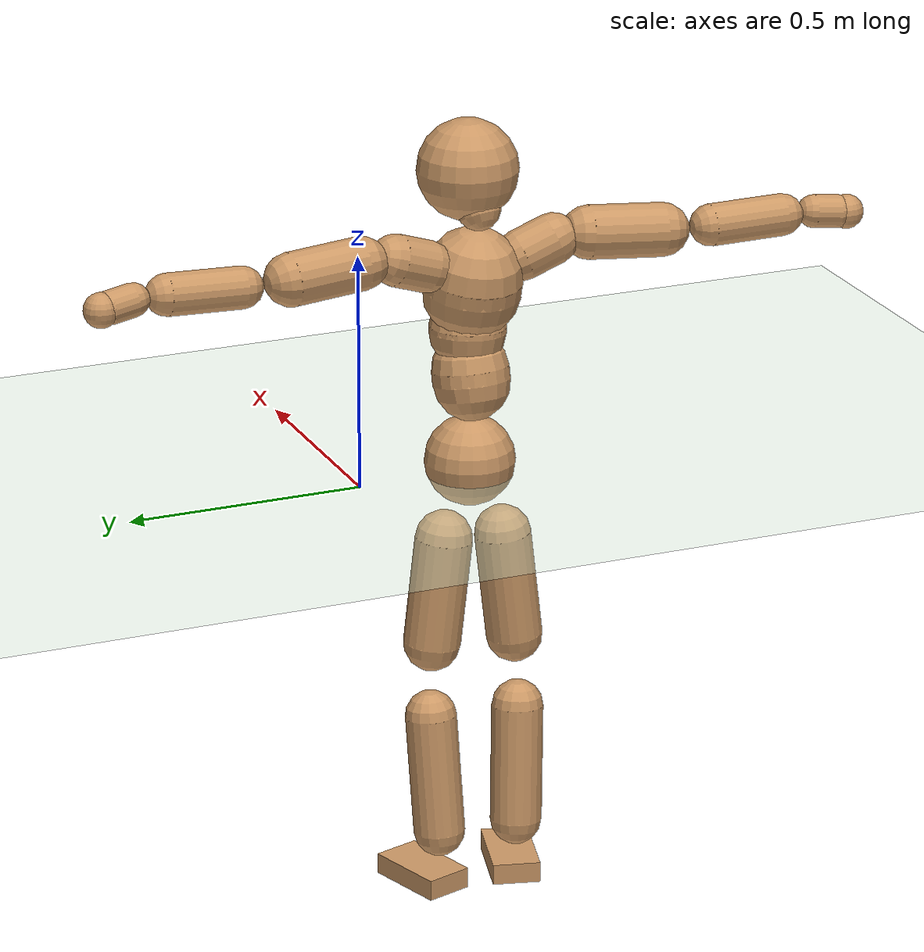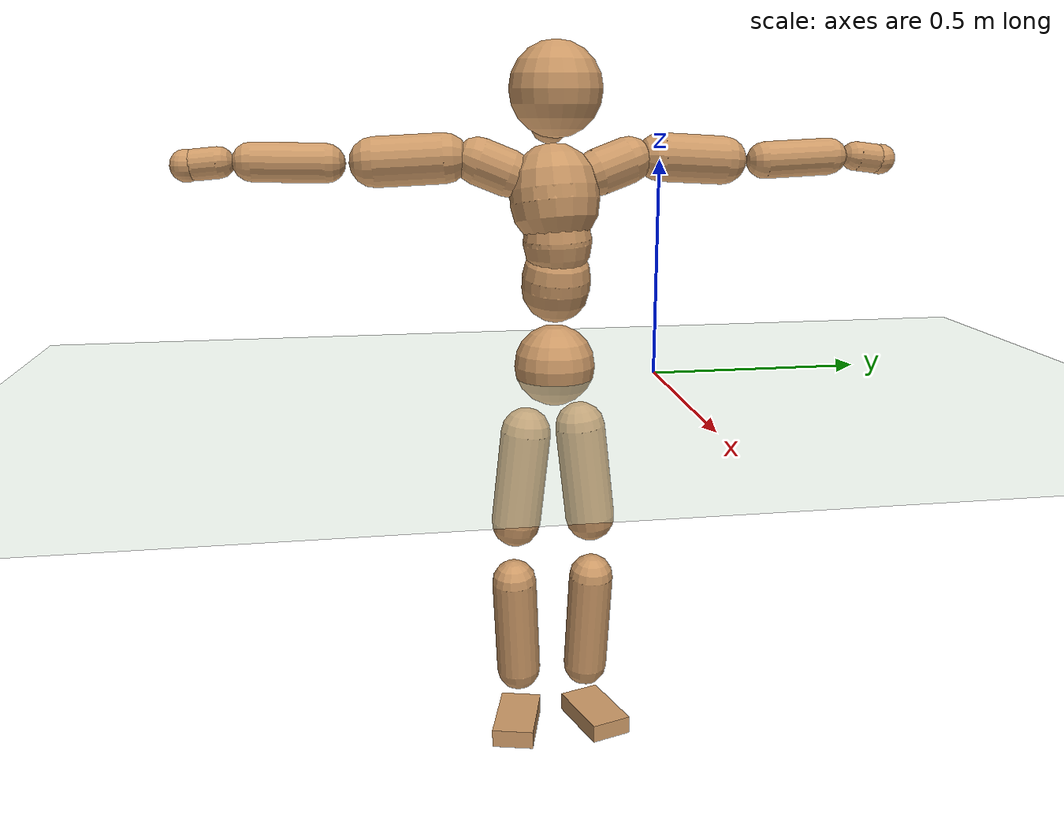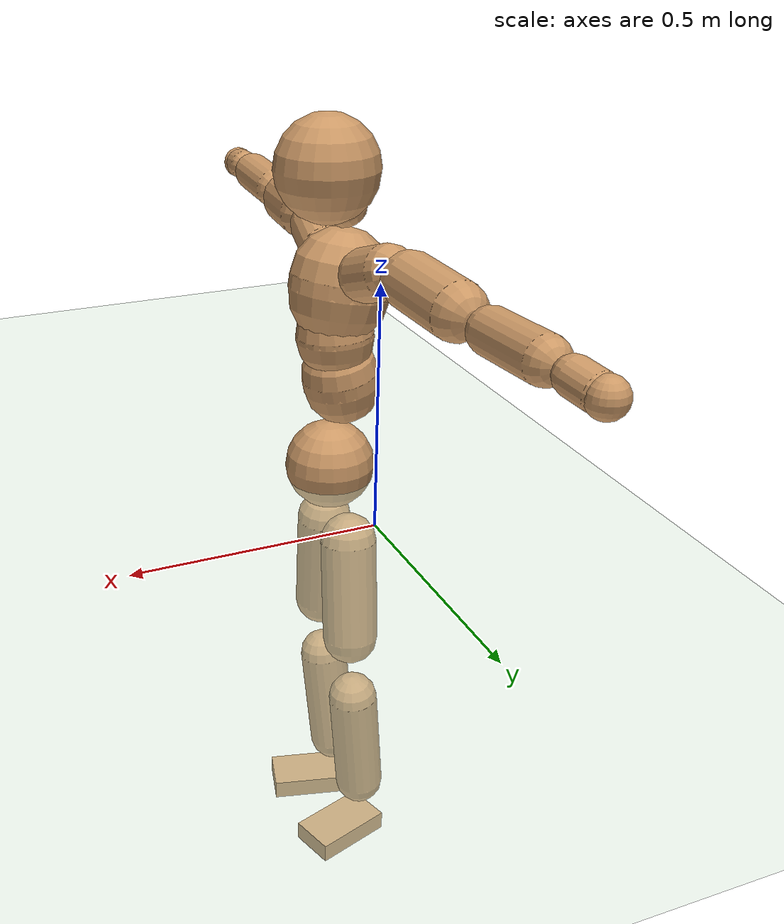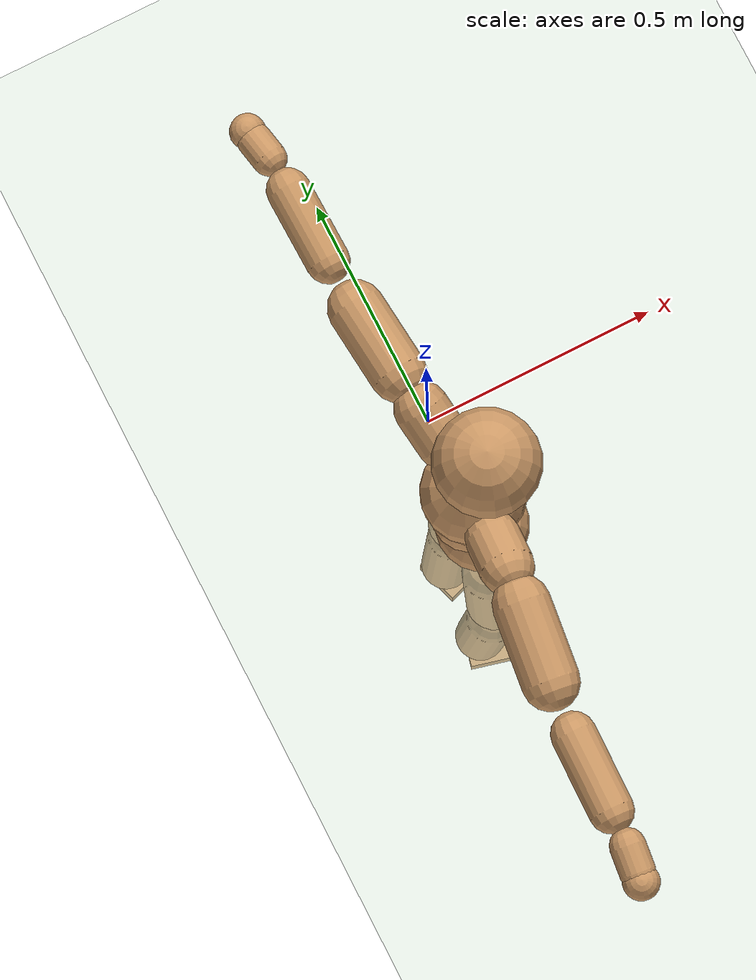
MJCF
<mujoco model="humanoid">
  <compiler coordinate="local"/>
  <default>
    <joint damping="0.0" armature="0.01" stiffness="0.0" limited="true"/>
    <geom conaffinity="1" condim="3" contype="7" margin="0.001" rgba="0.8 0.6 .4 1"/>
  </default>
  <asset>
    <texture type="skybox" builtin="gradient" rgb1=".4 .5 .6" rgb2="0 0 0" width="100" height="100"/>
    <texture builtin="flat" height="1278" mark="cross" markrgb="1 1 1" name="texgeom" random="0.01" rgb1="0.8 0.6 0.4" rgb2="0.8 0.6 0.4" type="cube" width="127"/>
    <texture builtin="checker" height="100" name="texplane" rgb1="0 0 0" rgb2="0.8 0.8 0.8" type="2d" width="100"/>
    <material name="MatPlane" reflectance="0.5" shininess="1" specular="1" texrepeat="60 60" texture="texplane"/>
    <material name="geom" texture="texgeom" texuniform="true"/>
  </asset>
  <worldbody>
    <light cutoff="100" diffuse="1 1 1" dir="-0 0 -1.3" directional="true" exponent="1" pos="0 0 1.3" specular=".1 .1 .1"/>
    <geom conaffinity="1" condim="3" name="floor" pos="0 0 0" rgba="0.8 0.9 0.8 1" size="100 100 .2" type="plane" material="MatPlane"/>
    <body name="Pelvis" pos="-0.0023 -0.2425 0.0277">
      <freejoint name="Pelvis"/>
      <geom type="sphere" contype="1" conaffinity="1" density="500" size="0.0957" pos="0.0000 0.0000 0.0000" name="Pelvis"/>
      <body name="L_Hip" pos="-0.0179 0.0571 -0.0823">
        <joint name="L_Hip_x" type="hinge" pos="0 0 0" axis="1 0 0" stiffness="800" damping="80" armature="0.02" range="-180.0000 180.0000"/>
        <joint name="L_Hip_y" type="hinge" pos="0 0 0" axis="0 1 0" stiffness="800" damping="80" armature="0.02" range="-180.0000 180.0000"/>
        <joint name="L_Hip_z" type="hinge" pos="0 0 0" axis="0 0 1" stiffness="800" damping="80" armature="0.02" range="-180.0000 180.0000"/>
        <geom type="capsule" contype="1" conaffinity="1" density="500" fromto="0.0015 0.0086 -0.0776 0.0061 0.0342 -0.3103" size="0.0605" name="L_Hip"/>
        <body name="L_Knee" pos="0.0077 0.0428 -0.3879">
          <joint name="L_Knee_x" type="hinge" pos="0 0 0" axis="1 0 0" stiffness="800" damping="80" armature="0.02" range="-180.0000 180.0000"/>
          <joint name="L_Knee_y" type="hinge" pos="0 0 0" axis="0 1 0" stiffness="800" damping="80" armature="0.02" range="-180.0000 180.0000"/>
          <joint name="L_Knee_z" type="hinge" pos="0 0 0" axis="0 0 1" stiffness="800" damping="80" armature="0.02" range="-180.0000 180.0000"/>
          <geom type="capsule" contype="1" conaffinity="1" density="500" fromto="-0.0075 -0.0030 -0.0861 -0.0300 -0.0121 -0.3443" size="0.0548" name="L_Knee"/>
          <body name="L_Ankle" pos="-0.0375 -0.0151 -0.4304">
            <joint name="L_Ankle_x" type="hinge" pos="0 0 0" axis="1 0 0" stiffness="800" damping="80" armature="0.02" range="-180.0000 180.0000"/>
            <joint name="L_Ankle_y" type="hinge" pos="0 0 0" axis="0 1 0" stiffness="800" damping="80" armature="0.02" range="-180.0000 180.0000"/>
            <joint name="L_Ankle_z" type="hinge" pos="0 0 0" axis="0 0 1" stiffness="800" damping="80" armature="0.02" range="-180.0000 180.0000"/>
            <geom type="box" contype="1" conaffinity="1" density="500" pos="0.0620 0.0196 -0.0303" size="0.0891 0.0512 0.0224" quat="0.9883 0.0000 0.0000 0.1523" name="L_Ankle"/>
            <body name="L_Toe" pos="0.1241 0.0392 -0.0605">
              <joint name="L_Toe_x" type="hinge" pos="0 0 0" axis="1 0 0" stiffness="500" damping="50" armature="0.02" range="-180.0000 180.0000"/>
              <joint name="L_Toe_y" type="hinge" pos="0 0 0" axis="0 1 0" stiffness="500" damping="50" armature="0.02" range="-180.0000 180.0000"/>
              <joint name="L_Toe_z" type="hinge" pos="0 0 0" axis="0 0 1" stiffness="500" damping="50" armature="0.02" range="-180.0000 180.0000"/>
              <geom type="box" contype="1" conaffinity="1" density="500" pos="0.0000 0.0000 0.0295" size="0.0011 0.0025 0.0011" quat="0.9876 0.0000 0.0000 0.1572" name="L_Toe"/>
            </body>
          </body>
        </body>
      </body>
      <body name="R_Hip" pos="-0.0138 -0.0589 -0.0908">
        <joint name="R_Hip_x" type="hinge" pos="0 0 0" axis="1 0 0" stiffness="800" damping="80" armature="0.02" range="-180.0000 180.0000"/>
        <joint name="R_Hip_y" type="hinge" pos="0 0 0" axis="0 1 0" stiffness="800" damping="80" armature="0.02" range="-180.0000 180.0000"/>
        <joint name="R_Hip_z" type="hinge" pos="0 0 0" axis="0 0 1" stiffness="800" damping="80" armature="0.02" range="-180.0000 180.0000"/>
        <geom type="capsule" contype="1" conaffinity="1" density="500" fromto="-0.0009 -0.0086 -0.0772 -0.0036 -0.0343 -0.3086" size="0.06" name="R_Hip"/>
        <body name="R_Knee" pos="-0.0045 -0.0429 -0.3858">
          <joint name="R_Knee_x" type="hinge" pos="0 0 0" axis="1 0 0" stiffness="800" damping="80" armature="0.02" range="-180.0000 180.0000"/>
          <joint name="R_Knee_y" type="hinge" pos="0 0 0" axis="0 1 0" stiffness="800" damping="80" armature="0.02" range="-180.0000 180.0000"/>
          <joint name="R_Knee_z" type="hinge" pos="0 0 0" axis="0 0 1" stiffness="800" damping="80" armature="0.02" range="-180.0000 180.0000"/>
          <geom type="capsule" contype="1" conaffinity="1" density="500" fromto="-0.0068 0.0040 -0.0849 -0.0272 0.0158 -0.3394" size="0.0549" name="R_Knee"/>
          <body name="R_Ankle" pos="-0.0339 0.0198 -0.4243">
            <joint name="R_Ankle_x" type="hinge" pos="0 0 0" axis="1 0 0" stiffness="800" damping="80" armature="0.02" range="-180.0000 180.0000"/>
            <joint name="R_Ankle_y" type="hinge" pos="0 0 0" axis="0 1 0" stiffness="800" damping="80" armature="0.02" range="-180.0000 180.0000"/>
            <joint name="R_Ankle_z" type="hinge" pos="0 0 0" axis="0 0 1" stiffness="800" damping="80" armature="0.02" range="-180.0000 180.0000"/>
            <geom type="box" contype="1" conaffinity="1" density="500" pos="0.0660 -0.0168 -0.0318" size="0.0913 0.0509 0.0225" quat="0.9922 0.0000 0.0000 -0.1245" name="R_Ankle"/>
            <body name="R_Toe" pos="0.1319 -0.0336 -0.0635">
              <joint name="R_Toe_x" type="hinge" pos="0 0 0" axis="1 0 0" stiffness="500" damping="50" armature="0.02" range="-180.0000 180.0000"/>
              <joint name="R_Toe_y" type="hinge" pos="0 0 0" axis="0 1 0" stiffness="500" damping="50" armature="0.02" range="-180.0000 180.0000"/>
              <joint name="R_Toe_z" type="hinge" pos="0 0 0" axis="0 0 1" stiffness="500" damping="50" armature="0.02" range="-180.0000 180.0000"/>
              <geom type="box" contype="1" conaffinity="1" density="500" pos="0.0000 0.0000 0.0317" size="0.0011 0.0025 0.0011" quat="0.9933 0.0000 0.0000 -0.1157" name="R_Toe"/>
            </body>
          </body>
        </body>
      </body>
      <body name="Torso" pos="-0.0358 0.0044 0.1246">
        <joint name="Torso_x" type="hinge" pos="0 0 0" axis="1 0 0" stiffness="1000" damping="100" armature="0.02" range="-180.0000 180.0000"/>
        <joint name="Torso_y" type="hinge" pos="0 0 0" axis="0 1 0" stiffness="1000" damping="100" armature="0.02" range="-180.0000 180.0000"/>
        <joint name="Torso_z" type="hinge" pos="0 0 0" axis="0 0 1" stiffness="1000" damping="100" armature="0.02" range="-180.0000 180.0000"/>
        <geom type="capsule" contype="1" conaffinity="1" density="500" fromto="0.0163 0.0028 0.0825 0.0109 0.0019 0.0550" size="0.0808" name="Torso"/>
        <body name="Spine" pos="0.0271 0.0046 0.1375">
          <joint name="Spine_x" type="hinge" pos="0 0 0" axis="1 0 0" stiffness="1000" damping="100" armature="0.02" range="-180.0000 180.0000"/>
          <joint name="Spine_y" type="hinge" pos="0 0 0" axis="0 1 0" stiffness="1000" damping="100" armature="0.02" range="-180.0000 180.0000"/>
          <joint name="Spine_z" type="hinge" pos="0 0 0" axis="0 0 1" stiffness="1000" damping="100" armature="0.02" range="-180.0000 180.0000"/>
          <geom type="capsule" contype="1" conaffinity="1" density="500" fromto="0.0016 -0.0014 0.0337 0.0011 -0.0009 0.0225" size="0.0804" name="Spine"/>
          <body name="Chest" pos="0.0027 -0.0023 0.0561">
            <joint name="Chest_x" type="hinge" pos="0 0 0" axis="1 0 0" stiffness="1000" damping="100" armature="0.02" range="-180.0000 180.0000"/>
            <joint name="Chest_y" type="hinge" pos="0 0 0" axis="0 1 0" stiffness="1000" damping="100" armature="0.02" range="-180.0000 180.0000"/>
            <joint name="Chest_z" type="hinge" pos="0 0 0" axis="0 0 1" stiffness="1000" damping="100" armature="0.02" range="-180.0000 180.0000"/>
            <geom type="capsule" contype="1" conaffinity="1" density="500" fromto="-0.0162 -0.0053 0.0898 -0.0108 -0.0035 0.0599" size="0.1036" name="Chest"/>
            <body name="Neck" pos="-0.0364 -0.0149 0.2177">
              <joint name="Neck_x" type="hinge" pos="0 0 0" axis="1 0 0" stiffness="500" damping="50" armature="0.02" range="-180.0000 180.0000"/>
              <joint name="Neck_y" type="hinge" pos="0 0 0" axis="0 1 0" stiffness="500" damping="50" armature="0.02" range="-180.0000 180.0000"/>
              <joint name="Neck_z" type="hinge" pos="0 0 0" axis="0 0 1" stiffness="500" damping="50" armature="0.02" range="-180.0000 180.0000"/>
              <geom type="capsule" contype="1" conaffinity="1" density="500" fromto="0.0099 0.0019 0.0182 0.0395 0.0074 0.0729" size="0.0463" name="Neck"/>
              <body name="Head" pos="0.0494 0.0093 0.0911">
                <joint name="Head_x" type="hinge" pos="0 0 0" axis="1 0 0" stiffness="500" damping="50" armature="0.02" range="-180.0000 180.0000"/>
                <joint name="Head_y" type="hinge" pos="0 0 0" axis="0 1 0" stiffness="500" damping="50" armature="0.02" range="-180.0000 180.0000"/>
                <joint name="Head_z" type="hinge" pos="0 0 0" axis="0 0 1" stiffness="500" damping="50" armature="0.02" range="-180.0000 180.0000"/>
                <geom type="sphere" contype="1" conaffinity="1" density="500" size="0.1057" pos="0.0000 0.0000 0.0000" name="Head"/>
              </body>
            </body>
            <body name="L_Thorax" pos="-0.02 0.0725 0.1162">
              <joint name="L_Thorax_x" type="hinge" pos="0 0 0" axis="1 0 0" stiffness="500" damping="50" armature="0.02" range="-180.0000 180.0000"/>
              <joint name="L_Thorax_y" type="hinge" pos="0 0 0" axis="0 1 0" stiffness="500" damping="50" armature="0.02" range="-180.0000 180.0000"/>
              <joint name="L_Thorax_z" type="hinge" pos="0 0 0" axis="0 0 1" stiffness="500" damping="50" armature="0.02" range="-180.0000 180.0000"/>
              <geom type="capsule" contype="1" conaffinity="1" density="500" fromto="-0.0039 0.0251 0.0089 -0.0155 0.1003 0.0357" size="0.0539" name="L_Thorax"/>
              <body name="L_Shoulder" pos="-0.0194 0.1253 0.0446">
                <joint name="L_Shoulder_x" type="hinge" pos="0 0 0" axis="1 0 0" stiffness="500" damping="50" armature="0.02" range="-720.0000 720.0000"/>
                <joint name="L_Shoulder_y" type="hinge" pos="0 0 0" axis="0 1 0" stiffness="500" damping="50" armature="0.02" range="-720.0000 720.0000"/>
                <joint name="L_Shoulder_z" type="hinge" pos="0 0 0" axis="0 0 1" stiffness="500" damping="50" armature="0.02" range="-720.0000 720.0000"/>
                <geom type="capsule" contype="1" conaffinity="1" density="500" fromto="-0.0045 0.0519 -0.0032 -0.0181 0.2075 -0.0126" size="0.0559" name="L_Shoulder"/>
                <body name="L_Elbow" pos="-0.0227 0.2594 -0.0158">
                  <joint name="L_Elbow_x" type="hinge" pos="0 0 0" axis="1 0 0" stiffness="500" damping="50" armature="0.02" range="-720.0000 720.0000"/>
                  <joint name="L_Elbow_y" type="hinge" pos="0 0 0" axis="0 1 0" stiffness="500" damping="50" armature="0.02" range="-720.0000 720.0000"/>
                  <joint name="L_Elbow_z" type="hinge" pos="0 0 0" axis="0 0 1" stiffness="500" damping="50" armature="0.02" range="-720.0000 720.0000"/>
                  <geom type="capsule" contype="1" conaffinity="1" density="500" fromto="-0.0015 0.0535 0.0024 -0.0059 0.2139 0.0095" size="0.0434" name="L_Elbow"/>
                  <body name="L_Wrist" pos="-0.0073 0.2674 0.0118">
                    <joint name="L_Wrist_x" type="hinge" pos="0 0 0" axis="1 0 0" stiffness="300" damping="30" armature="0.02" range="-180.0000 180.0000"/>
                    <joint name="L_Wrist_y" type="hinge" pos="0 0 0" axis="0 1 0" stiffness="300" damping="30" armature="0.02" range="-180.0000 180.0000"/>
                    <joint name="L_Wrist_z" type="hinge" pos="0 0 0" axis="0 0 1" stiffness="300" damping="30" armature="0.02" range="-180.0000 180.0000"/>
                    <geom type="capsule" contype="1" conaffinity="1" density="500" fromto="-0.0031 0.0175 -0.0021 -0.0125 0.0701 -0.0085" size="0.0346" name="L_Wrist"/>
                    <body name="L_Hand" pos="-0.0157 0.0876 -0.0106">
                      <joint name="L_Hand_x" type="hinge" pos="0 0 0" axis="1 0 0" stiffness="300" damping="30" armature="0.02" range="-180.0000 180.0000"/>
                      <joint name="L_Hand_y" type="hinge" pos="0 0 0" axis="0 1 0" stiffness="300" damping="30" armature="0.02" range="-180.0000 180.0000"/>
                      <joint name="L_Hand_z" type="hinge" pos="0 0 0" axis="0 0 1" stiffness="300" damping="30" armature="0.02" range="-180.0000 180.0000"/>
                      <geom type="sphere" contype="1" conaffinity="1" density="500" size="0.0360" pos="0.0000 0.0000 0.0000" name="L_Hand"/>
                    </body>
                  </body>
                </body>
              </body>
            </body>
            <body name="R_Thorax" pos="-0.0244 -0.0841 0.1152">
              <joint name="R_Thorax_x" type="hinge" pos="0 0 0" axis="1 0 0" stiffness="500" damping="50" armature="0.02" range="-180.0000 180.0000"/>
              <joint name="R_Thorax_y" type="hinge" pos="0 0 0" axis="0 1 0" stiffness="500" damping="50" armature="0.02" range="-180.0000 180.0000"/>
              <joint name="R_Thorax_z" type="hinge" pos="0 0 0" axis="0 0 1" stiffness="500" damping="50" armature="0.02" range="-180.0000 180.0000"/>
              <geom type="capsule" contype="1" conaffinity="1" density="500" fromto="-0.0017 -0.0229 0.0093 -0.0067 -0.0916 0.0373" size="0.0539" name="R_Thorax"/>
              <body name="R_Shoulder" pos="-0.0084 -0.1145 0.0466">
                <joint name="R_Shoulder_x" type="hinge" pos="0 0 0" axis="1 0 0" stiffness="500" damping="50" armature="0.02" range="-720.0000 720.0000"/>
                <joint name="R_Shoulder_y" type="hinge" pos="0 0 0" axis="0 1 0" stiffness="500" damping="50" armature="0.02" range="-720.0000 720.0000"/>
                <joint name="R_Shoulder_z" type="hinge" pos="0 0 0" axis="0 0 1" stiffness="500" damping="50" armature="0.02" range="-720.0000 720.0000"/>
                <geom type="capsule" contype="1" conaffinity="1" density="500" fromto="-0.0062 -0.0525 -0.0028 -0.0247 -0.2099 -0.0112" size="0.0567" name="R_Shoulder"/>
                <body name="R_Elbow" pos="-0.0308 -0.2624 -0.014">
                  <joint name="R_Elbow_x" type="hinge" pos="0 0 0" axis="1 0 0" stiffness="500" damping="50" armature="0.02" range="-720.0000 720.0000"/>
                  <joint name="R_Elbow_y" type="hinge" pos="0 0 0" axis="0 1 0" stiffness="500" damping="50" armature="0.02" range="-720.0000 720.0000"/>
                  <joint name="R_Elbow_z" type="hinge" pos="0 0 0" axis="0 0 1" stiffness="500" damping="50" armature="0.02" range="-720.0000 720.0000"/>
                  <geom type="capsule" contype="1" conaffinity="1" density="500" fromto="-0.0012 -0.0540 0.0012 -0.0049 -0.2160 0.0047" size="0.0441" name="R_Elbow"/>
                  <body name="R_Wrist" pos="-0.0061 -0.27 0.0059">
                    <joint name="R_Wrist_x" type="hinge" pos="0 0 0" axis="1 0 0" stiffness="300" damping="30" armature="0.02" range="-180.0000 180.0000"/>
                    <joint name="R_Wrist_y" type="hinge" pos="0 0 0" axis="0 1 0" stiffness="300" damping="30" armature="0.02" range="-180.0000 180.0000"/>
                    <joint name="R_Wrist_z" type="hinge" pos="0 0 0" axis="0 0 1" stiffness="300" damping="30" armature="0.02" range="-180.0000 180.0000"/>
                    <geom type="capsule" contype="1" conaffinity="1" density="500" fromto="-0.0020 -0.0178 -0.0017 -0.0080 -0.0714 -0.0069" size="0.0351" name="R_Wrist"/>
                    <body name="R_Hand" pos="-0.01 -0.0892 -0.0086">
                      <joint name="R_Hand_x" type="hinge" pos="0 0 0" axis="1 0 0" stiffness="300" damping="30" armature="0.02" range="-180.0000 180.0000"/>
                      <joint name="R_Hand_y" type="hinge" pos="0 0 0" axis="0 1 0" stiffness="300" damping="30" armature="0.02" range="-180.0000 180.0000"/>
                      <joint name="R_Hand_z" type="hinge" pos="0 0 0" axis="0 0 1" stiffness="300" damping="30" armature="0.02" range="-180.0000 180.0000"/>
                      <geom type="sphere" contype="1" conaffinity="1" density="500" size="0.0363" pos="0.0000 0.0000 0.0000" name="R_Hand"/>
                    </body>
                  </body>
                </body>
              </body>
            </body>
          </body>
        </body>
      </body>
    </body>
  </worldbody>
  <actuator>
    <motor name="L_Hip_x" joint="L_Hip_x" gear="500"/>
    <motor name="L_Hip_y" joint="L_Hip_y" gear="500"/>
    <motor name="L_Hip_z" joint="L_Hip_z" gear="500"/>
    <motor name="L_Knee_x" joint="L_Knee_x" gear="500"/>
    <motor name="L_Knee_y" joint="L_Knee_y" gear="500"/>
    <motor name="L_Knee_z" joint="L_Knee_z" gear="500"/>
    <motor name="L_Ankle_x" joint="L_Ankle_x" gear="500"/>
    <motor name="L_Ankle_y" joint="L_Ankle_y" gear="500"/>
    <motor name="L_Ankle_z" joint="L_Ankle_z" gear="500"/>
    <motor name="L_Toe_x" joint="L_Toe_x" gear="500"/>
    <motor name="L_Toe_y" joint="L_Toe_y" gear="500"/>
    <motor name="L_Toe_z" joint="L_Toe_z" gear="500"/>
    <motor name="R_Hip_x" joint="R_Hip_x" gear="500"/>
    <motor name="R_Hip_y" joint="R_Hip_y" gear="500"/>
    <motor name="R_Hip_z" joint="R_Hip_z" gear="500"/>
    <motor name="R_Knee_x" joint="R_Knee_x" gear="500"/>
    <motor name="R_Knee_y" joint="R_Knee_y" gear="500"/>
    <motor name="R_Knee_z" joint="R_Knee_z" gear="500"/>
    <motor name="R_Ankle_x" joint="R_Ankle_x" gear="500"/>
    <motor name="R_Ankle_y" joint="R_Ankle_y" gear="500"/>
    <motor name="R_Ankle_z" joint="R_Ankle_z" gear="500"/>
    <motor name="R_Toe_x" joint="R_Toe_x" gear="500"/>
    <motor name="R_Toe_y" joint="R_Toe_y" gear="500"/>
    <motor name="R_Toe_z" joint="R_Toe_z" gear="500"/>
    <motor name="Torso_x" joint="Torso_x" gear="500"/>
    <motor name="Torso_y" joint="Torso_y" gear="500"/>
    <motor name="Torso_z" joint="Torso_z" gear="500"/>
    <motor name="Spine_x" joint="Spine_x" gear="500"/>
    <motor name="Spine_y" joint="Spine_y" gear="500"/>
    <motor name="Spine_z" joint="Spine_z" gear="500"/>
    <motor name="Chest_x" joint="Chest_x" gear="500"/>
    <motor name="Chest_y" joint="Chest_y" gear="500"/>
    <motor name="Chest_z" joint="Chest_z" gear="500"/>
    <motor name="Neck_x" joint="Neck_x" gear="500"/>
    <motor name="Neck_y" joint="Neck_y" gear="500"/>
    <motor name="Neck_z" joint="Neck_z" gear="500"/>
    <motor name="Head_x" joint="Head_x" gear="500"/>
    <motor name="Head_y" joint="Head_y" gear="500"/>
    <motor name="Head_z" joint="Head_z" gear="500"/>
    <motor name="L_Thorax_x" joint="L_Thorax_x" gear="500"/>
    <motor name="L_Thorax_y" joint="L_Thorax_y" gear="500"/>
    <motor name="L_Thorax_z" joint="L_Thorax_z" gear="500"/>
    <motor name="L_Shoulder_x" joint="L_Shoulder_x" gear="500"/>
    <motor name="L_Shoulder_y" joint="L_Shoulder_y" gear="500"/>
    <motor name="L_Shoulder_z" joint="L_Shoulder_z" gear="500"/>
    <motor name="L_Elbow_x" joint="L_Elbow_x" gear="500"/>
    <motor name="L_Elbow_y" joint="L_Elbow_y" gear="500"/>
    <motor name="L_Elbow_z" joint="L_Elbow_z" gear="500"/>
    <motor name="L_Wrist_x" joint="L_Wrist_x" gear="500"/>
    <motor name="L_Wrist_y" joint="L_Wrist_y" gear="500"/>
    <motor name="L_Wrist_z" joint="L_Wrist_z" gear="500"/>
    <motor name="L_Hand_x" joint="L_Hand_x" gear="500"/>
    <motor name="L_Hand_y" joint="L_Hand_y" gear="500"/>
    <motor name="L_Hand_z" joint="L_Hand_z" gear="500"/>
    <motor name="R_Thorax_x" joint="R_Thorax_x" gear="500"/>
    <motor name="R_Thorax_y" joint="R_Thorax_y" gear="500"/>
    <motor name="R_Thorax_z" joint="R_Thorax_z" gear="500"/>
    <motor name="R_Shoulder_x" joint="R_Shoulder_x" gear="500"/>
    <motor name="R_Shoulder_y" joint="R_Shoulder_y" gear="500"/>
    <motor name="R_Shoulder_z" joint="R_Shoulder_z" gear="500"/>
    <motor name="R_Elbow_x" joint="R_Elbow_x" gear="500"/>
    <motor name="R_Elbow_y" joint="R_Elbow_y" gear="500"/>
    <motor name="R_Elbow_z" joint="R_Elbow_z" gear="500"/>
    <motor name="R_Wrist_x" joint="R_Wrist_x" gear="500"/>
    <motor name="R_Wrist_y" joint="R_Wrist_y" gear="500"/>
    <motor name="R_Wrist_z" joint="R_Wrist_z" gear="500"/>
    <motor name="R_Hand_x" joint="R_Hand_x" gear="500"/>
    <motor name="R_Hand_y" joint="R_Hand_y" gear="500"/>
    <motor name="R_Hand_z" joint="R_Hand_z" gear="500"/>
  </actuator>
  <contact>
    <exclude body1="Torso" body2="Chest"/>
    <exclude body1="Head" body2="Chest"/>
    <exclude body1="R_Knee" body2="R_Toe"/>
    <exclude body1="R_Knee" body2="L_Ankle"/>
    <exclude body1="R_Knee" body2="L_Toe"/>
    <exclude body1="L_Knee" body2="L_Toe"/>
    <exclude body1="L_Knee" body2="R_Ankle"/>
    <exclude body1="L_Knee" body2="R_Toe"/>
    <exclude body1="L_Shoulder" body2="Chest"/>
    <exclude body1="R_Shoulder" body2="Chest"/>
  </contact>
  <sensor/>
  <size njmax="700" nconmax="700"/>
</mujoco>
